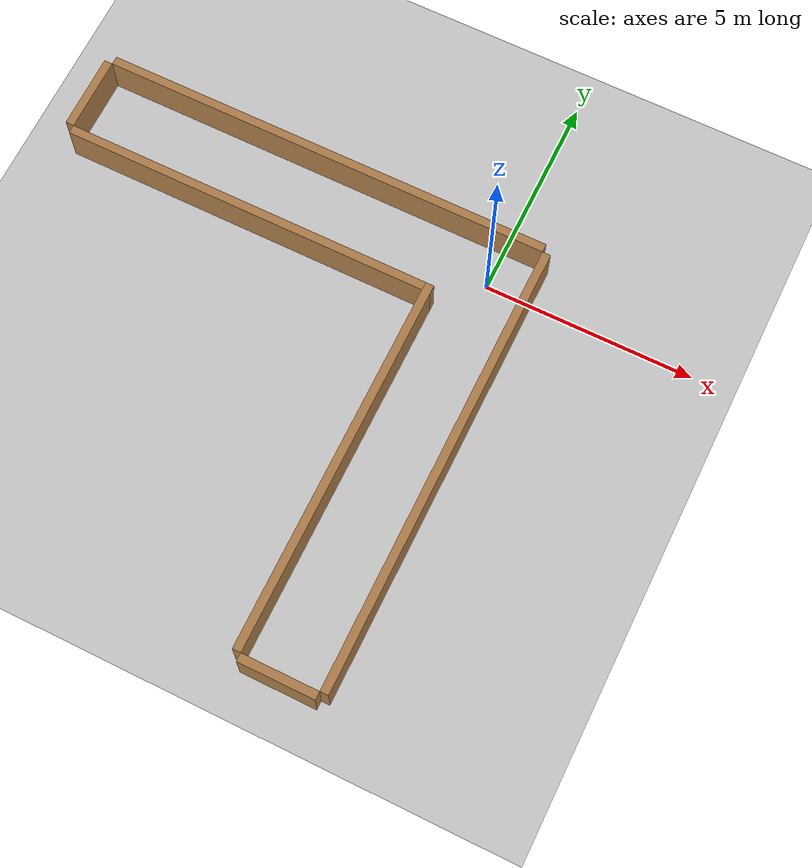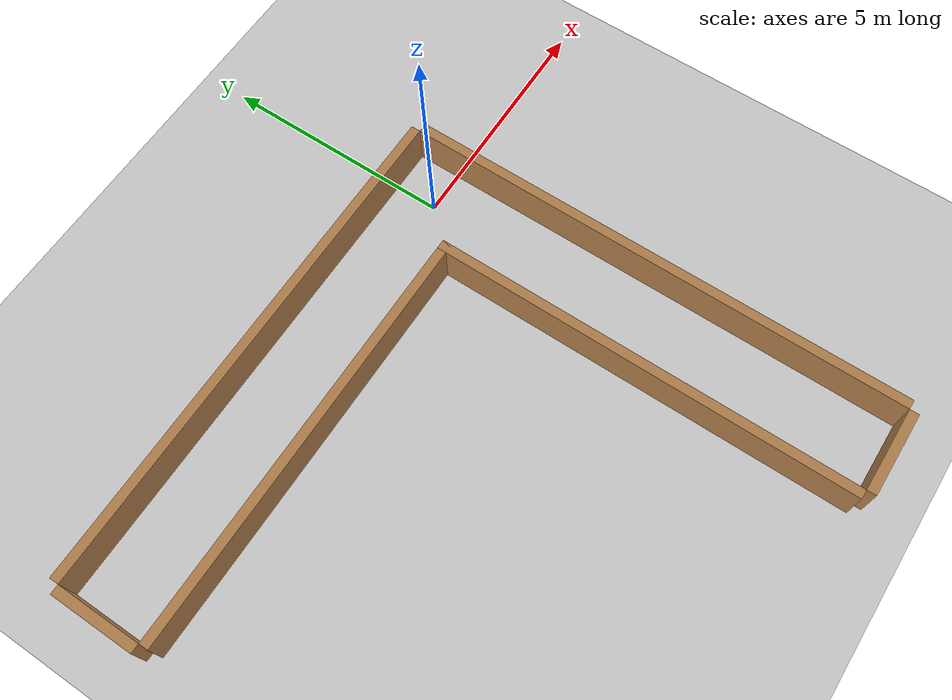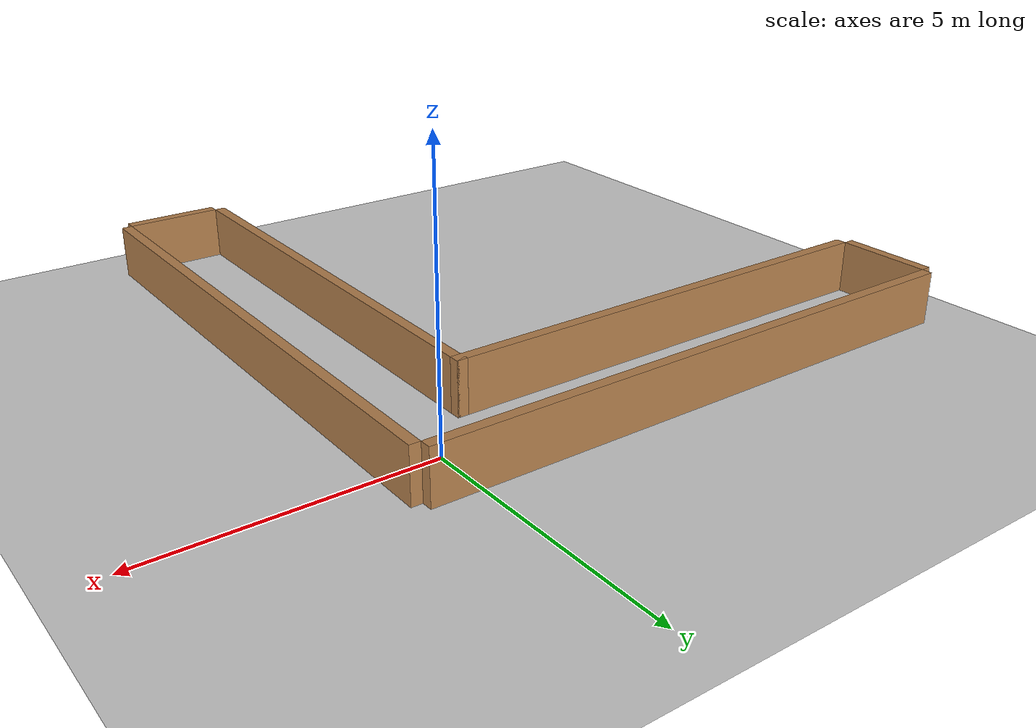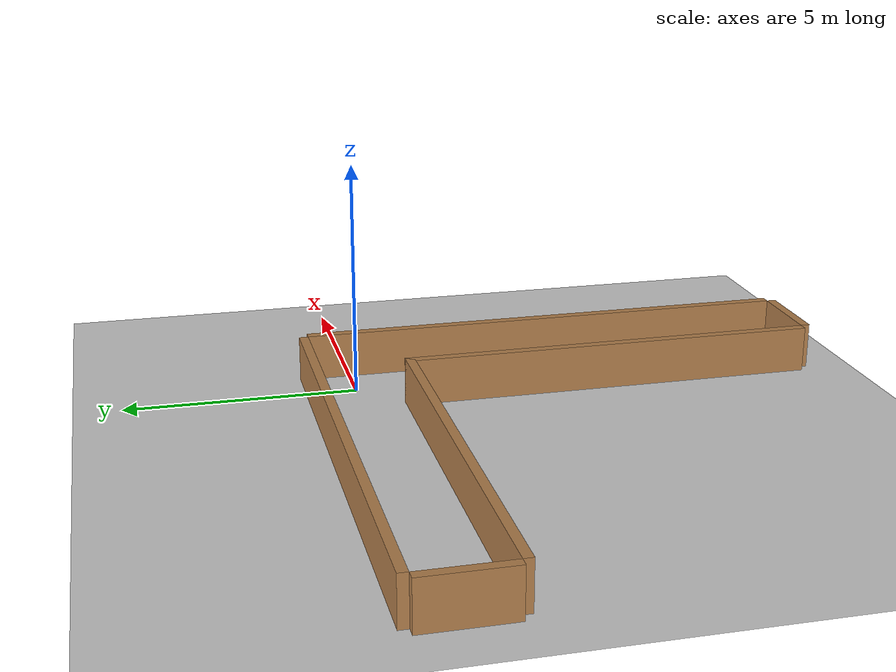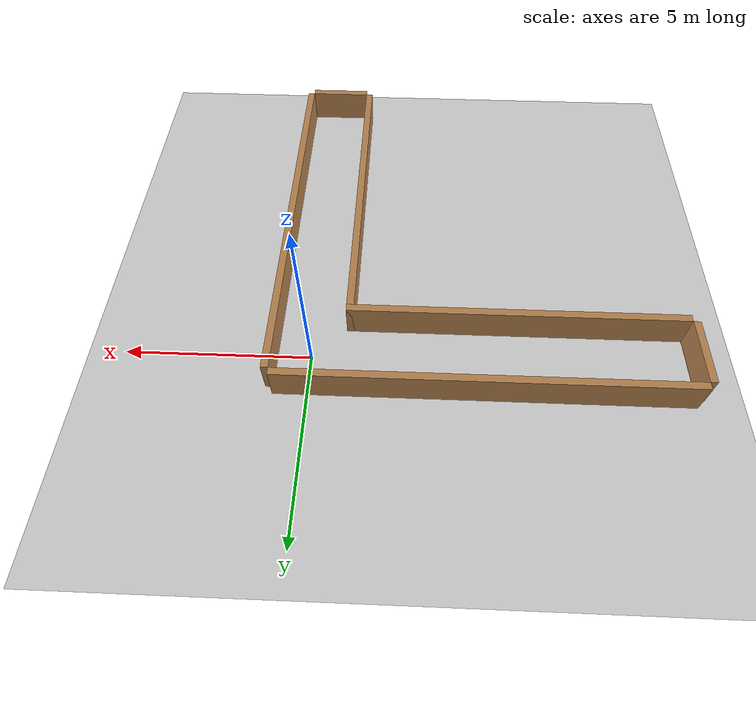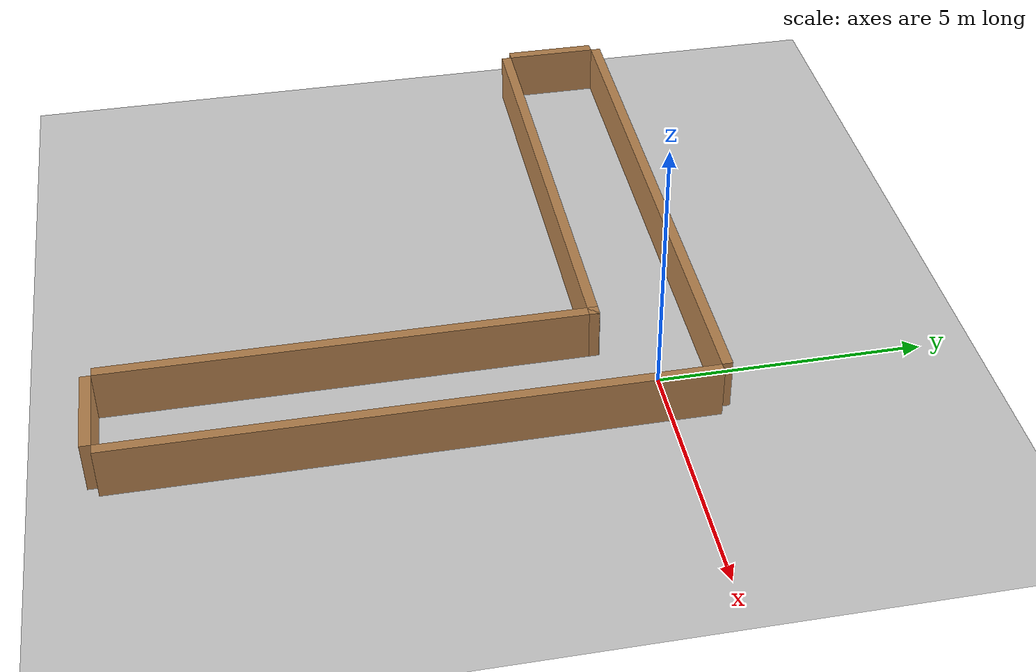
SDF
<sdf version="1.6">
 <world name="default">
  <plugin name="gazebo_occupancy_map" filename="libgazebo_2Dmap_plugin.so">
   <map_resolution>0.05</map_resolution>
   <map_height>0.3</map_height>
   <map_size_x>30.0</map_size_x>
   <map_size_y>30.0</map_size_y>
   <init_robot_x>0</init_robot_x>
   <init_robot_y>0</init_robot_y>
  </plugin>
  <light name="sun" type="directional">
   <pose>0 0 10 0 -0 0</pose>
   <diffuse>0.8 0.8 0.8 1</diffuse>
   <specular>0.2 0.2 0.2 1</specular>
   <attenuation>
    <range>1000</range>
    <constant>0.9</constant>
    <linear>0.01</linear>
    <quadratic>0.001</quadratic>
   </attenuation>
   <direction>-0.5 0.1 -0.9</direction>
  </light>
  <model name="ground_plane">
   <static>1</static>
   <link name="link">
    <collision name="collision">
     <geometry><plane><normal>0 0 1</normal><size>100 100</size></plane></geometry>
     <surface>
      <contact><collide_bitmask>65535</collide_bitmask></contact>
      <friction><ode><mu>100</mu><mu2>50</mu2></ode></friction>
     </surface>
    </collision>
    <visual name="visual">
     <cast_shadows>0</cast_shadows>
     <geometry><plane><normal>0 0 1</normal><size>100 100</size></plane></geometry>
     <material>
      <script><uri>file://media/materials/scripts/gazebo.material</uri><name>Gazebo/Grey</name></script>
     </material>
    </visual>
   </link>
  </model>
  <gravity>0 0 -9.8</gravity>
  <magnetic_field>6e-06 2.3e-05 -4.2e-05</magnetic_field>
  <atmosphere type="adiabatic"/>
  <physics name="default_physics" default="0" type="ode">
   <max_step_size>0.001</max_step_size>
   <real_time_factor>1</real_time_factor>
   <real_time_update_rate>1000</real_time_update_rate>
  </physics>
  <scene><ambient>0.4 0.4 0.4 1</ambient><background>0.7 0.7 0.7 1</background><shadows>1</shadows></scene>
  <audio><device>default</device></audio>
  <spherical_coordinates>
   <surface_model>EARTH_WGS84</surface_model>
   <latitude_deg>0</latitude_deg>
   <longitude_deg>0</longitude_deg>
   <elevation>0</elevation>
   <heading_deg>0</heading_deg>
  </spherical_coordinates>
  <model name="L-shaped">
   <link name="Wall_0">
    <collision name="Wall_0_Collision">
     <geometry><box><size>10.9 0.2 1.0</size></box></geometry>
     <pose>0 0 0.5 0 0 0</pose>
    </collision>
    <visual name="Wall_0_Visual">
     <pose>0 0 0.5 0 -0 0</pose>
     <geometry><box><size>10.9 0.2 1.0</size></box></geometry>
     <material>
      <script><uri>file://media/materials/scripts/gazebo.material</uri><name>Gazebo/Wood</name></script>
      <ambient>1 1 1 1</ambient>
     </material>
     <meta><layer>0</layer></meta>
    </visual>
    <pose>-4.55 1.0 0 0 0 0</pose>
   </link>
   <link name="Wall_1">
    <collision name="Wall_1_Collision">
     <geometry><box><size>0.2 1.8 1.0</size></box></geometry>
     <pose>0 0 0.5 0 0 0</pose>
    </collision>
    <visual name="Wall_1_Visual">
     <pose>0 0 0.5 0 -0 0</pose>
     <geometry><box><size>0.2 1.8 1.0</size></box></geometry>
     <material>
      <script><uri>file://media/materials/scripts/gazebo.material</uri><name>Gazebo/Wood</name></script>
      <ambient>1 1 1 1</ambient>
     </material>
     <meta><layer>0</layer></meta>
    </visual>
    <pose>-10.1 0.0 0 0 0 0</pose>
   </link>
   <link name="Wall_2">
    <collision name="Wall_2_Collision">
     <geometry><box><size>9.1 0.2 1.0</size></box></geometry>
     <pose>0 0 0.5 0 0 0</pose>
    </collision>
    <visual name="Wall_2_Visual">
     <pose>0 0 0.5 0 0 0</pose>
     <geometry><box><size>9.1 0.2 1.0</size></box></geometry>
     <material>
      <script><uri>file://media/materials/scripts/gazebo.material</uri><name>Gazebo/Wood</name></script>
      <ambient>1 1 1 1</ambient>
     </material>
     <meta><layer>0</layer></meta>
    </visual>
    <pose>-5.45 -1.0 0 0 0 0</pose>
   </link>
   <link name="Wall_3">
    <collision name="Wall_3_Collision">
     <geometry><box><size>9.1 0.2 1.0</size></box></geometry>
     <pose>0 0 0.5 0 0 0</pose>
    </collision>
    <visual name="Wall_3_Visual">
     <pose>0 0 0.5 0 0 0</pose>
     <geometry><box><size>9.1 0.2 1.0</size></box></geometry>
     <material>
      <script><uri>file://media/materials/scripts/gazebo.material</uri><name>Gazebo/Wood</name></script>
      <ambient>1 1 1 1</ambient>
     </material>
     <meta><layer>0</layer></meta>
    </visual>
    <pose>-1.0 -5.45 0 0 0 1.57079632679</pose>
   </link>
   <link name="Wall_4">
    <collision name="Wall_4_Collision">
     <geometry><box><size>0.2 1.8 1.0</size></box></geometry>
     <pose>0 0 0.5 0 0 0</pose>
    </collision>
    <visual name="Wall_4_Visual">
     <pose>0 0 0.5 0 0 0</pose>
     <geometry><box><size>0.2 1.8 1.0</size></box></geometry>
     <material>
      <script><uri>file://media/materials/scripts/gazebo.material</uri><name>Gazebo/Wood</name></script>
      <ambient>1 1 1 1</ambient>
     </material>
     <meta><layer>0</layer></meta>
    </visual>
    <pose>-6.18446633569e-16 -10.1 0 0 0 1.57079632679</pose>
   </link>
   <link name="Wall_5">
    <collision name="Wall_5_Collision">
     <geometry><box><size>10.9 0.2 1.0</size></box></geometry>
     <pose>0 0 0.5 0 -0 0</pose>
    </collision>
    <visual name="Wall_5_Visual">
     <pose>0 0 0.5 0 0 0</pose>
     <geometry><box><size>10.9 0.2 1.0</size></box></geometry>
     <material>
      <script><uri>file://media/materials/scripts/gazebo.material</uri><name>Gazebo/Wood</name></script>
      <ambient>1 1 1 1</ambient>
     </material>
     <meta><layer>0</layer></meta>
    </visual>
    <pose>1.0 -4.55 0 0 0 1.57079632679</pose>
   </link>
   <static>1</static>
  </model>
 </world>
</sdf>
